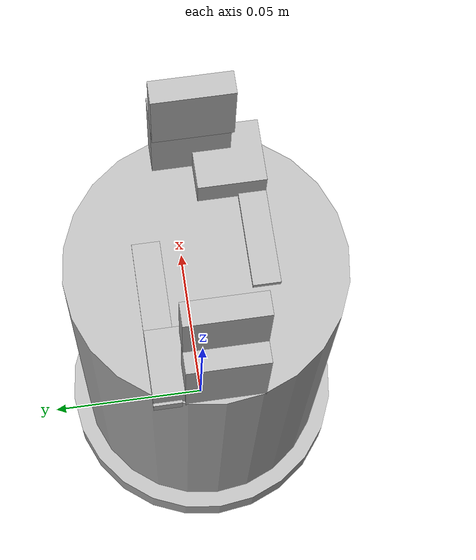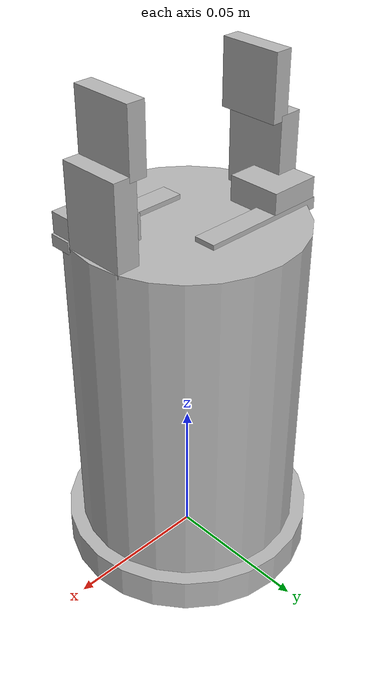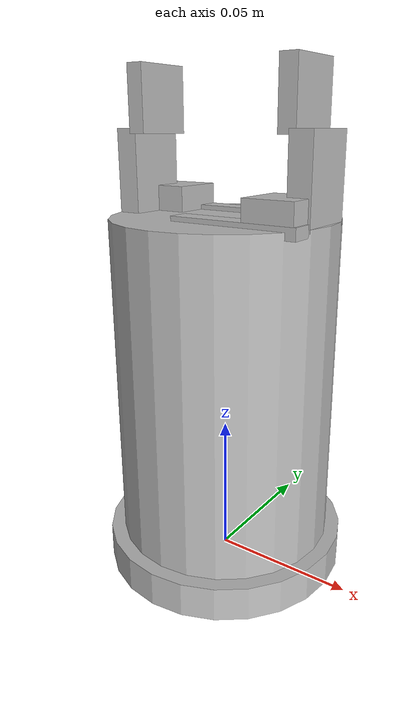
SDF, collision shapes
<?xml version="1.0" ?>
<sdf version="1.9">
  <model name="Robotiq Hand-E">

    <link name="hande_base_link">
      <visual name="hande_base_visual">
        <geometry>
          <mesh>
            <uri>hande_base_visual.glb</uri>
          </mesh>
        </geometry>
      </visual>
      <collision name="body_collider_cylinder">
        <pose>0.0 0.0 0.06855 3.141593 -0.0 1.570796</pose>
        <geometry>
          <cylinder>
            <radius>0.038</radius>
            <length>0.1131</length>
          </cylinder>
        </geometry>
      </collision>
      <collision name="cylinder003_collider_cylinder">
        <pose>0.0 0.0 0.006 0.0 0.0 0.0</pose>
        <geometry>
          <cylinder>
            <radius>0.043</radius>
            <length>0.012</length>
          </cylinder>
        </geometry>
      </collision>
    </link>

    <link name="hande_finger_link_r">
      <visual name="hande_finger_visual">
        <geometry>
          <mesh>
            <uri>hande_finger_visual.glb</uri>
          </mesh>
        </geometry>
      </visual>
      <collision name="finger_collider_box">
        <pose>0.032595 -1e-05 0.138138 0.0 0.0 0.0</pose>
        <geometry>
          <box>
            <size>0.007839 0.021 0.028622</size>
          </box>
        </geometry>
      </collision>
      <collision name="finger_collider_box.001">
        <pose>0.028 -1e-05 0.16145 0.0 0.0 0.0</pose>
        <geometry>
          <box>
            <size>0.006 0.021 0.021498</size>
          </box>
        </geometry>
      </collision>
      <collision name="finger_collider_box.002">
        <pose>0.014354 -0.015 0.124725 0.0 0.0 0.0</pose>
        <geometry>
          <box>
            <size>0.044319 0.0075 0.003949</size>
          </box>
        </geometry>
      </collision>
      <collision name="finger_collider_box.003">
        <pose>0.027046 -0.00954 0.129064 0.0 0.0 0.0</pose>
        <geometry>
          <box>
            <size>0.017387 0.018419 0.009271</size>
          </box>
        </geometry>
      </collision>
    </link>

    <link name="hande_finger_link_l">
      <pose>0 0 0 0 0 3.14159</pose>
      <visual name="hande_finger_visual">
        <geometry>
          <mesh>
            <uri>hande_finger_visual.glb</uri>
          </mesh>
        </geometry>
      </visual>
      <collision name="finger_collider_box">
        <pose>0.032595 -1e-05 0.138138 0.0 0.0 0.0</pose>
        <geometry>
          <box>
            <size>0.007839 0.021 0.028622</size>
          </box>
        </geometry>
      </collision>
      <collision name="finger_collider_box.001">
        <pose>0.028 -1e-05 0.16145 0.0 0.0 0.0</pose>
        <geometry>
          <box>
            <size>0.006 0.021 0.021498</size>
          </box>
        </geometry>
      </collision>
      <collision name="finger_collider_box.002">
        <pose>0.014354 -0.015 0.124725 0.0 0.0 0.0</pose>
        <geometry>
          <box>
            <size>0.044319 0.0075 0.003949</size>
          </box>
        </geometry>
      </collision>
      <collision name="finger_collider_box.003">
        <pose>0.027046 -0.00954 0.129064 0.0 0.0 0.0</pose>
        <geometry>
          <box>
            <size>0.017387 0.018419 0.009271</size>
          </box>
        </geometry>
      </collision>
    </link>

  </model>
</sdf>
